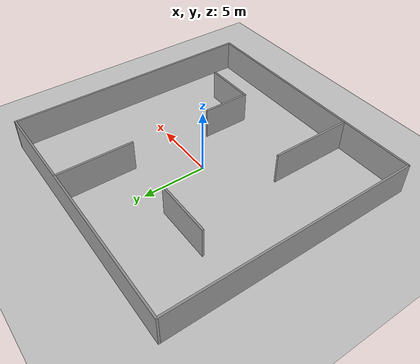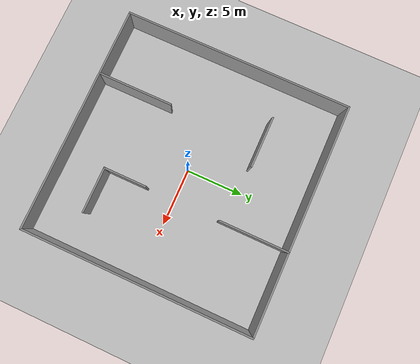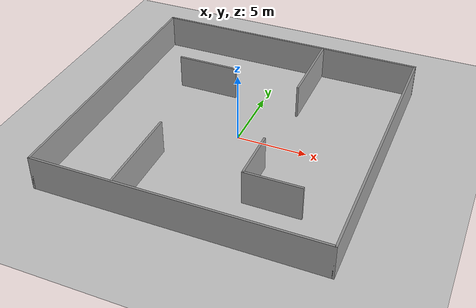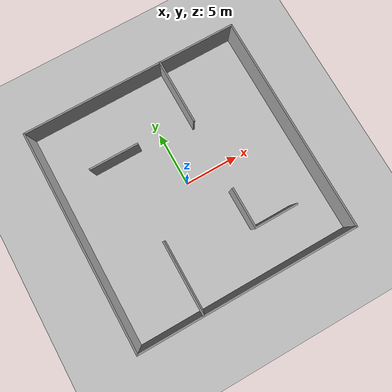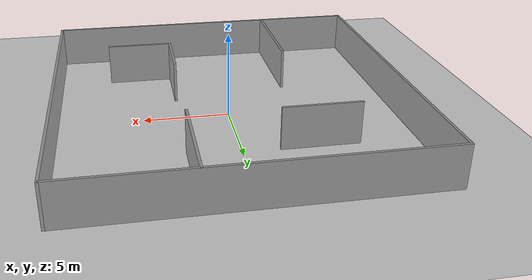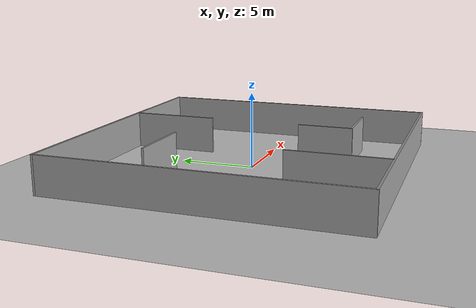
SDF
<sdf version="1.7">
 <world name="default">
  <light name="sun" type="directional">
   <pose>0 0 10 0 -0 0</pose>
   <diffuse>0.8 0.8 0.8 1</diffuse>
   <specular>0.2 0.2 0.2 1</specular>
   <attenuation>
    <range>1000</range>
    <constant>0.9</constant>
    <linear>0.01</linear>
    <quadratic>0.001</quadratic>
   </attenuation>
   <direction>-0.5 0.1 -0.9</direction>
   <spot><inner_angle>0</inner_angle><outer_angle>0</outer_angle><falloff>0</falloff></spot>
  </light>
  <model name="ground_plane">
   <static>1</static>
   <link name="link">
    <collision name="collision">
     <geometry><plane><normal>0 0 1</normal><size>100 100</size></plane></geometry>
     <surface><friction><ode><mu>100</mu><mu2>50</mu2></ode></friction></surface>
    </collision>
    <visual name="visual">
     <cast_shadows>0</cast_shadows>
     <geometry><plane><normal>0 0 1</normal><size>100 100</size></plane></geometry>
     <material>
      <script><uri>file://media/materials/scripts/gazebo.material</uri><name>Gazebo/Grey</name></script>
     </material>
    </visual>
   </link>
  </model>
  <gravity>0 0 -9.8</gravity>
  <magnetic_field>6e-06 2.3e-05 -4.2e-05</magnetic_field>
  <atmosphere type="adiabatic"/>
  <physics type="ode">
   <max_step_size>0.001</max_step_size>
   <real_time_factor>1</real_time_factor>
   <real_time_update_rate>1000</real_time_update_rate>
  </physics>
  <scene><ambient>0.4 0.4 0.4 1</ambient><background>0.7 0.7 0.7 1</background><shadows>1</shadows></scene>
  <spherical_coordinates>
   <surface_model>EARTH_WGS84</surface_model>
   <latitude_deg>0</latitude_deg>
   <longitude_deg>0</longitude_deg>
   <elevation>0</elevation>
   <heading_deg>0</heading_deg>
  </spherical_coordinates>
  <model name="map4">
   <pose>0.021222 0.016182 0 0 -0 0</pose>
   <link name="Wall_0">
    <collision name="Wall_0_Collision">
     <geometry><box><size>20 0.15 2.5</size></box></geometry>
     <pose>0 0 1.25 0 -0 0</pose>
    </collision>
    <visual name="Wall_0_Visual">
     <pose>0 0 1.25 0 -0 0</pose>
     <geometry><box><size>20 0.15 2.5</size></box></geometry>
     <material>
      <script><uri>file://media/materials/scripts/gazebo.material</uri><name>Gazebo/Grey</name></script>
      <ambient>1 1 1 1</ambient>
     </material>
     <meta><layer>0</layer></meta>
    </visual>
    <pose>-0 -9.925 0 0 -0 0</pose>
   </link>
   <link name="Wall_10">
    <collision name="Wall_10_Collision">
     <geometry><box><size>6.5 0.15 2.5</size></box></geometry>
     <pose>0 0 1.25 0 -0 0</pose>
    </collision>
    <visual name="Wall_10_Visual">
     <pose>0 0 1.25 0 -0 0</pose>
     <geometry><box><size>6.5 0.15 2.5</size></box></geometry>
     <material>
      <script><uri>file://media/materials/scripts/gazebo.material</uri><name>Gazebo/Grey</name></script>
      <ambient>1 1 1 1</ambient>
     </material>
     <meta><layer>0</layer></meta>
    </visual>
    <pose>-4.10727 -6.64438 0 0 -0 1.5708</pose>
   </link>
   <link name="Wall_12">
    <collision name="Wall_12_Collision">
     <geometry><box><size>3.75 0.15 2.5</size></box></geometry>
     <pose>0 0 1.25 0 -0 0</pose>
    </collision>
    <visual name="Wall_12_Visual">
     <pose>0 0 1.25 0 -0 0</pose>
     <geometry><box><size>3.75 0.15 2.5</size></box></geometry>
     <material>
      <script><uri>file://media/materials/scripts/gazebo.material</uri><name>Gazebo/Grey</name></script>
      <ambient>1 1 1 1</ambient>
     </material>
     <meta><layer>0</layer></meta>
    </visual>
    <pose>2.85812 -4.26702 0 0 -0 -1.5708</pose>
   </link>
   <link name="Wall_13">
    <collision name="Wall_13_Collision">
     <geometry><box><size>4 0.15 2.5</size></box></geometry>
     <pose>0 0 1.25 0 -0 0</pose>
    </collision>
    <visual name="Wall_13_Visual">
     <pose>0 0 1.25 0 -0 0</pose>
     <geometry><box><size>4 0.15 2.5</size></box></geometry>
     <material>
      <script><uri>file://media/materials/scripts/gazebo.material</uri><name>Gazebo/Grey</name></script>
      <ambient>1 1 1 1</ambient>
     </material>
     <meta><layer>0</layer></meta>
    </visual>
    <pose>4.78312 -6.06702 0 0 -0 0</pose>
   </link>
   <link name="Wall_2">
    <collision name="Wall_2_Collision">
     <geometry><box><size>20 0.15 2.5</size></box></geometry>
     <pose>0 0 1.25 0 -0 0</pose>
    </collision>
    <visual name="Wall_2_Visual">
     <pose>0 0 1.25 0 -0 0</pose>
     <geometry><box><size>20 0.15 2.5</size></box></geometry>
     <material>
      <script><uri>file://media/materials/scripts/gazebo.material</uri><name>Gazebo/Grey</name></script>
      <ambient>1 1 1 1</ambient>
     </material>
     <meta><layer>0</layer></meta>
    </visual>
    <pose>9.925 0 0 0 -0 1.5708</pose>
   </link>
   <link name="Wall_3">
    <collision name="Wall_3_Collision">
     <geometry><box><size>20 0.15 2.5</size></box></geometry>
     <pose>0 0 1.25 0 -0 0</pose>
    </collision>
    <visual name="Wall_3_Visual">
     <pose>0 0 1.25 0 -0 0</pose>
     <geometry><box><size>20 0.15 2.5</size></box></geometry>
     <material>
      <script><uri>file://media/materials/scripts/gazebo.material</uri><name>Gazebo/Grey</name></script>
      <ambient>1 1 1 1</ambient>
     </material>
     <meta><layer>0</layer></meta>
    </visual>
    <pose>-0 9.925 0 0 -0 3.14159</pose>
   </link>
   <link name="Wall_4">
    <collision name="Wall_4_Collision">
     <geometry><box><size>20 0.15 2.5</size></box></geometry>
     <pose>0 0 1.25 0 -0 0</pose>
    </collision>
    <visual name="Wall_4_Visual">
     <pose>0 0 1.25 0 -0 0</pose>
     <geometry><box><size>20 0.15 2.5</size></box></geometry>
     <material>
      <script><uri>file://media/materials/scripts/gazebo.material</uri><name>Gazebo/Grey</name></script>
      <ambient>1 1 1 1</ambient>
     </material>
     <meta><layer>0</layer></meta>
    </visual>
    <pose>-9.925 0 0 0 -0 -1.5708</pose>
   </link>
   <link name="Wall_6">
    <collision name="Wall_6_Collision">
     <geometry><box><size>4.5 0.15 2.5</size></box></geometry>
     <pose>0 0 1.25 0 -0 0</pose>
    </collision>
    <visual name="Wall_6_Visual">
     <pose>0 0 1.25 0 -0 0</pose>
     <geometry><box><size>4.5 0.15 2.5</size></box></geometry>
     <material>
      <script><uri>file://media/materials/scripts/gazebo.material</uri><name>Gazebo/Grey</name></script>
      <ambient>1 1 1 1</ambient>
     </material>
     <meta><layer>0</layer></meta>
    </visual>
    <pose>-4.32443 4.60391 0 0 -0 0</pose>
   </link>
   <link name="Wall_8">
    <collision name="Wall_8_Collision">
     <geometry><box><size>6 0.15 2.5</size></box></geometry>
     <pose>0 0 1.25 0 -0 0</pose>
    </collision>
    <visual name="Wall_8_Visual">
     <pose>0 0 1.25 0 -0 0</pose>
     <geometry><box><size>6 0.15 2.5</size></box></geometry>
     <material>
      <script><uri>file://media/materials/scripts/gazebo.material</uri><name>Gazebo/Grey</name></script>
      <ambient>1 1 1 1</ambient>
     </material>
     <meta><layer>0</layer></meta>
    </visual>
    <pose>2.8933 6.99091 0 0 -0 -1.5708</pose>
   </link>
   <static>1</static>
  </model>
 </world>
</sdf>
